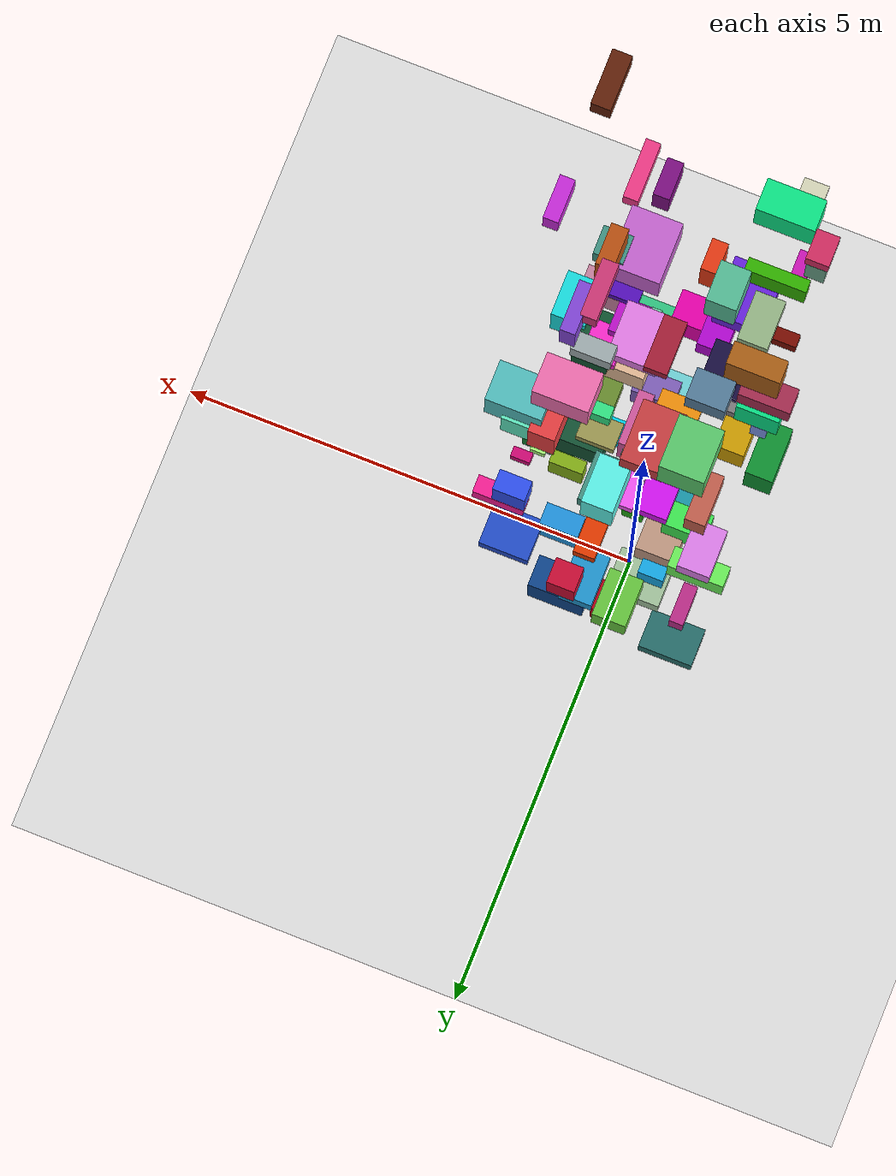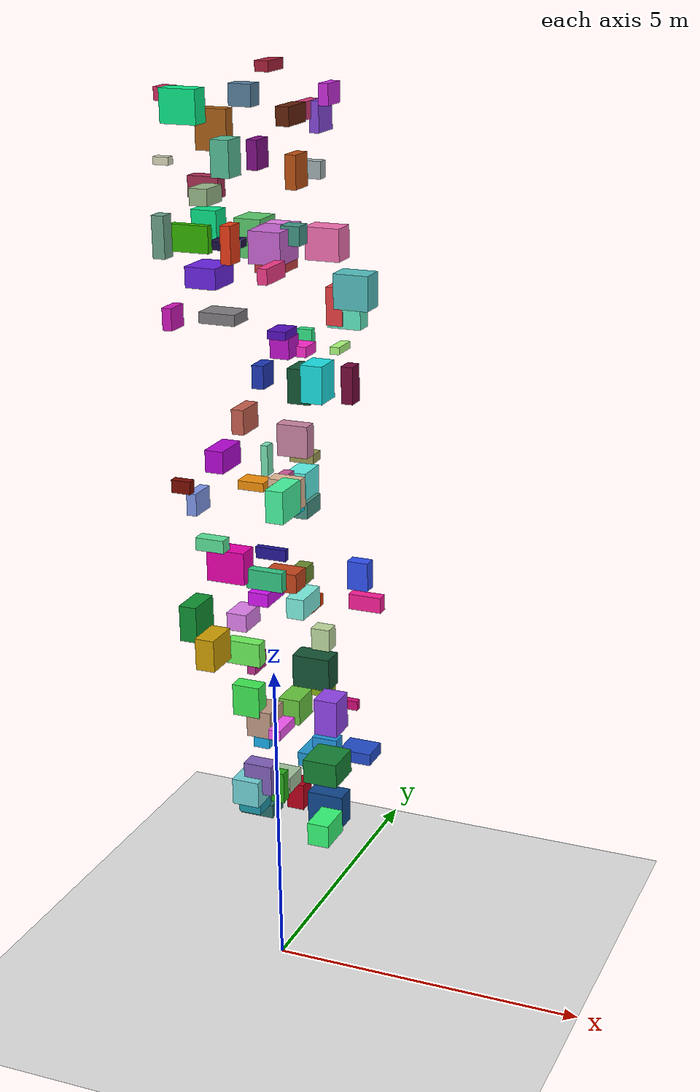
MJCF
<mujoco>
  <option timestep="0.002" gravity="0 0 -9.81" iterations="50"/>
  <compiler angle="degree"/>

  <worldbody>

    <light diffuse="0.6 0.6 0.6" pos="0 0 6" dir="0 0 -1"/>
    <light diffuse="0.4 0.4 0.4" pos="3 3 6" dir="-1 -1 -1"/>

    <geom type="plane" size="5 5 0.1" rgba="0.9 0.9 0.9 1"
          friction="1.0 0.5 0.5"/>

    <body pos="1.063 0.027 13.715">
      <joint type="free"/>
      <geom type="box"
            size="0.070 0.202 0.144"
            rgba="0.80 0.17 0.87 1"
            friction="0.8 0.1 0.1"/>
    </body>

    <body pos="0.105 0.965 7.726">
      <joint type="free"/>
      <geom type="box"
            size="0.158 0.247 0.296"
            rgba="0.37 0.97 0.93 1"
            friction="0.8 0.1 0.1"/>
    </body>

    <body pos="-0.774 0.261 10.458">
      <joint type="free"/>
      <geom type="box"
            size="0.286 0.216 0.083"
            rgba="0.50 0.49 0.50 1"
            friction="0.8 0.1 0.1"/>
    </body>

    <body pos="1.101 -0.360 4.685">
      <joint type="free"/>
      <geom type="box"
            size="0.181 0.210 0.285"
            rgba="0.58 0.27 0.93 1"
            friction="0.8 0.1 0.1"/>
    </body>

    <body pos="-0.020 0.422 7.712">
      <joint type="free"/>
      <geom type="box"
            size="0.104 0.223 0.243"
            rgba="0.19 0.46 0.36 1"
            friction="0.8 0.1 0.1"/>
    </body>

    <body pos="-0.790 -0.669 13.550">
      <joint type="free"/>
      <geom type="box"
            size="0.271 0.146 0.235"
            rgba="0.04 0.92 0.54 1"
            friction="0.8 0.1 0.1"/>
    </body>

    <body pos="0.769 -0.538 6.513">
      <joint type="free"/>
      <geom type="box"
            size="0.137 0.293 0.157"
            rgba="0.50 0.96 0.90 1"
            friction="0.8 0.1 0.1"/>
    </body>

    <body pos="-0.252 -0.462 11.685">
      <joint type="free"/>
      <geom type="box"
            size="0.077 0.148 0.269"
            rgba="0.92 0.23 0.08 1"
            friction="0.8 0.1 0.1"/>
    </body>

    <body pos="0.691 0.292 4.850">
      <joint type="free"/>
      <geom type="box"
            size="0.176 0.068 0.225"
            rgba="0.53 0.70 0.09 1"
            friction="0.8 0.1 0.1"/>
    </body>

    <body pos="0.348 -0.311 7.992">
      <joint type="free"/>
      <geom type="box"
            size="0.134 0.209 0.192"
            rgba="0.62 0.06 0.23 1"
            friction="0.8 0.1 0.1"/>
    </body>

    <body pos="-1.027 -0.280 7.772">
      <joint type="free"/>
      <geom type="box"
            size="0.078 0.217 0.172"
            rgba="0.50 0.60 0.93 1"
            friction="0.8 0.1 0.1"/>
    </body>

    <body pos="0.213 -0.976 3.758">
      <joint type="free"/>
      <geom type="box"
            size="0.223 0.131 0.239"
            rgba="0.51 0.38 0.74 1"
            friction="0.8 0.1 0.1"/>
    </body>

    <body pos="-0.761 -0.516 5.503">
      <joint type="free"/>
      <geom type="box"
            size="0.154 0.277 0.253"
            rgba="0.82 0.63 0.01 1"
            friction="0.8 0.1 0.1"/>
    </body>

    <body pos="-0.513 0.004 12.781">
      <joint type="free"/>
      <geom type="box"
            size="0.141 0.188 0.262"
            rgba="0.34 0.75 0.60 1"
            friction="0.8 0.1 0.1"/>
    </body>

    <body pos="0.061 0.311 7.818">
      <joint type="free"/>
      <geom type="box"
            size="0.078 0.274 0.292"
            rgba="0.83 0.35 0.63 1"
            friction="0.8 0.1 0.1"/>
    </body>

    <body pos="0.650 -1.051 11.473">
      <joint type="free"/>
      <geom type="box"
            size="0.071 0.285 0.110"
            rgba="0.96 0.23 0.54 1"
            friction="0.8 0.1 0.1"/>
    </body>

    <body pos="0.796 1.170 10.468">
      <joint type="free"/>
      <geom type="box"
            size="0.259 0.148 0.238"
            rgba="0.38 0.93 0.77 1"
            friction="0.8 0.1 0.1"/>
    </body>

    <body pos="-0.289 0.682 2.798">
      <joint type="free"/>
      <geom type="box"
            size="0.281 0.223 0.132"
            rgba="0.65 0.78 0.63 1"
            friction="0.8 0.1 0.1"/>
    </body>

    <body pos="0.928 -0.203 5.840">
      <joint type="free"/>
      <geom type="box"
            size="0.143 0.120 0.170"
            rgba="0.76 0.87 0.63 1"
            friction="0.8 0.1 0.1"/>
    </body>

    <body pos="0.686 1.128 9.916">
      <joint type="free"/>
      <geom type="box"
            size="0.071 0.206 0.055"
            rgba="0.68 1.00 0.49 1"
            friction="0.8 0.1 0.1"/>
    </body>

    <body pos="1.039 -1.153 13.582">
      <joint type="free"/>
      <geom type="box"
            size="0.092 0.260 0.125"
            rgba="0.39 0.13 0.04 1"
            friction="0.8 0.1 0.1"/>
    </body>

    <body pos="0.605 0.591 3.482">
      <joint type="free"/>
      <geom type="box"
            size="0.206 0.114 0.274"
            rgba="0.13 0.59 0.89 1"
            friction="0.8 0.1 0.1"/>
    </body>

    <body pos="0.092 0.410 11.725">
      <joint type="free"/>
      <geom type="box"
            size="0.227 0.256 0.106"
            rgba="0.91 0.50 0.92 1"
            friction="0.8 0.1 0.1"/>
    </body>

    <body pos="0.477 0.562 13.412">
      <joint type="free"/>
      <geom type="box"
            size="0.076 0.268 0.123"
            rgba="0.82 0.22 0.47 1"
            friction="0.8 0.1 0.1"/>
    </body>

    <body pos="-0.866 0.733 5.511">
      <joint type="free"/>
      <geom type="box"
            size="0.168 0.249 0.143"
            rgba="0.89 0.51 0.94 1"
            friction="0.8 0.1 0.1"/>
    </body>

    <body pos="0.651 1.185 10.551">
      <joint type="free"/>
      <geom type="box"
            size="0.128 0.183 0.285"
            rgba="0.92 0.25 0.26 1"
            friction="0.8 0.1 0.1"/>
    </body>

    <body pos="-0.594 0.301 4.333">
      <joint type="free"/>
      <geom type="box"
            size="0.226 0.130 0.259"
            rgba="0.25 0.93 0.33 1"
            friction="0.8 0.1 0.1"/>
    </body>

    <body pos="-1.116 -0.812 11.794">
      <joint type="free"/>
      <geom type="box"
            size="0.093 0.113 0.299"
            rgba="0.42 0.64 0.54 1"
            friction="0.8 0.1 0.1"/>
    </body>

    <body pos="-0.075 0.954 2.438">
      <joint type="free"/>
      <geom type="box"
            size="0.145 0.163 0.221"
            rgba="0.73 0.00 0.10 1"
            friction="0.8 0.1 0.1"/>
    </body>

    <body pos="-0.627 -0.398 11.213">
      <joint type="free"/>
      <geom type="box"
            size="0.236 0.282 0.150"
            rgba="0.42 0.14 0.89 1"
            friction="0.8 0.1 0.1"/>
    </body>

    <body pos="0.956 1.094 10.805">
      <joint type="free"/>
      <geom type="box"
            size="0.271 0.192 0.260"
            rgba="0.33 0.76 0.76 1"
            friction="0.8 0.1 0.1"/>
    </body>

    <body pos="0.284 0.814 10.114">
      <joint type="free"/>
      <geom type="box"
            size="0.112 0.063 0.131"
            rgba="0.20 0.91 0.53 1"
            friction="0.8 0.1 0.1"/>
    </body>

    <body pos="0.551 1.020 11.488">
      <joint type="free"/>
      <geom type="box"
            size="0.267 0.190 0.240"
            rgba="0.96 0.44 0.70 1"
            friction="0.8 0.1 0.1"/>
    </body>

    <body pos="1.087 -0.621 2.865">
      <joint type="free"/>
      <geom type="box"
            size="0.170 0.273 0.181"
            rgba="0.21 0.99 0.47 1"
            friction="0.8 0.1 0.1"/>
    </body>

    <body pos="-0.150 -1.024 7.164">
      <joint type="free"/>
      <geom type="box"
            size="0.295 0.158 0.244"
            rgba="0.93 0.00 0.69 1"
            friction="0.8 0.1 0.1"/>
    </body>

    <body pos="-0.858 0.021 12.240">
      <joint type="free"/>
      <geom type="box"
            size="0.140 0.230 0.121"
            rgba="0.60 0.73 0.54 1"
            friction="0.8 0.1 0.1"/>
    </body>

    <body pos="-0.421 0.575 3.656">
      <joint type="free"/>
      <geom type="box"
            size="0.133 0.247 0.175"
            rgba="0.09 0.68 0.92 1"
            friction="0.8 0.1 0.1"/>
    </body>

    <body pos="-0.788 1.005 2.053">
      <joint type="free"/>
      <geom type="box"
            size="0.289 0.202 0.115"
            rgba="0.16 0.44 0.43 1"
            friction="0.8 0.1 0.1"/>
    </body>

    <body pos="0.015 0.041 3.041">
      <joint type="free"/>
      <geom type="box"
            size="0.112 0.086 0.255"
            rgba="0.15 0.67 0.09 1"
            friction="0.8 0.1 0.1"/>
    </body>

    <body pos="0.367 -0.157 8.035">
      <joint type="free"/>
      <geom type="box"
            size="0.237 0.128 0.224"
            rgba="0.91 0.74 0.60 1"
            friction="0.8 0.1 0.1"/>
    </body>

    <body pos="0.457 0.942 2.302">
      <joint type="free"/>
      <geom type="box"
            size="0.299 0.167 0.274"
            rgba="0.06 0.28 0.56 1"
            friction="0.8 0.1 0.1"/>
    </body>

    <body pos="0.165 1.055 5.789">
      <joint type="free"/>
      <geom type="box"
            size="0.110 0.209 0.091"
            rgba="0.91 0.23 0.00 1"
            friction="0.8 0.1 0.1"/>
    </body>

    <body pos="0.304 -0.655 12.974">
      <joint type="free"/>
      <geom type="box"
            size="0.076 0.175 0.200"
            rgba="0.50 0.06 0.52 1"
            friction="0.8 0.1 0.1"/>
    </body>

    <body pos="-0.888 -1.095 12.879">
      <joint type="free"/>
      <geom type="box"
            size="0.115 0.068 0.053"
            rgba="0.86 0.86 0.74 1"
            friction="0.8 0.1 0.1"/>
    </body>

    <body pos="0.701 -0.532 8.994">
      <joint type="free"/>
      <geom type="box"
            size="0.234 0.112 0.233"
            rgba="0.80 0.52 0.64 1"
            friction="0.8 0.1 0.1"/>
    </body>

    <body pos="-1.138 -0.296 5.864">
      <joint type="free"/>
      <geom type="box"
            size="0.140 0.281 0.285"
            rgba="0.06 0.58 0.20 1"
            friction="0.8 0.1 0.1"/>
    </body>

    <body pos="0.365 1.138 3.720">
      <joint type="free"/>
      <geom type="box"
            size="0.147 0.135 0.227"
            rgba="0.81 0.05 0.21 1"
            friction="0.8 0.1 0.1"/>
    </body>

    <body pos="-0.307 1.106 11.144">
      <joint type="free"/>
      <geom type="box"
            size="0.207 0.292 0.149"
            rgba="0.80 0.25 0.26 1"
            friction="0.8 0.1 0.1"/>
    </body>

    <body pos="0.998 0.764 9.493">
      <joint type="free"/>
      <geom type="box"
            size="0.090 0.129 0.281"
            rgba="0.46 0.04 0.23 1"
            friction="0.8 0.1 0.1"/>
    </body>

    <body pos="0.215 0.867 7.469">
      <joint type="free"/>
      <geom type="box"
            size="0.112 0.249 0.128"
            rgba="0.27 0.58 0.52 1"
            friction="0.8 0.1 0.1"/>
    </body>

    <body pos="0.872 -0.113 9.749">
      <joint type="free"/>
      <geom type="box"
            size="0.164 0.219 0.275"
            rgba="0.10 0.89 0.90 1"
            friction="0.8 0.1 0.1"/>
    </body>

    <body pos="-0.333 -1.192 7.508">
      <joint type="free"/>
      <geom type="box"
            size="0.219 0.100 0.096"
            rgba="0.36 0.90 0.60 1"
            friction="0.8 0.1 0.1"/>
    </body>

    <body pos="0.476 0.210 10.104">
      <joint type="free"/>
      <geom type="box"
            size="0.159 0.175 0.077"
            rgba="1.00 0.17 0.82 1"
            friction="0.8 0.1 0.1"/>
    </body>

    <body pos="0.323 0.604 8.357">
      <joint type="free"/>
      <geom type="box"
            size="0.188 0.136 0.070"
            rgba="0.63 0.61 0.33 1"
            friction="0.8 0.1 0.1"/>
    </body>

    <body pos="1.008 1.026 6.398">
      <joint type="free"/>
      <geom type="box"
            size="0.166 0.104 0.230"
            rgba="0.19 0.32 0.96 1"
            friction="0.8 0.1 0.1"/>
    </body>

    <body pos="-0.832 0.948 8.718">
      <joint type="free"/>
      <geom type="box"
            size="0.100 0.252 0.196"
            rgba="0.78 0.38 0.31 1"
            friction="0.8 0.1 0.1"/>
    </body>

    <body pos="-0.936 -0.893 8.204">
      <joint type="free"/>
      <geom type="box"
            size="0.149 0.065 0.097"
            rgba="0.49 0.05 0.01 1"
            friction="0.8 0.1 0.1"/>
    </body>

    <body pos="0.396 -0.982 6.984">
      <joint type="free"/>
      <geom type="box"
            size="0.284 0.073 0.148"
            rgba="0.20 0.79 0.52 1"
            friction="0.8 0.1 0.1"/>
    </body>

    <body pos="-0.998 0.621 13.063">
      <joint type="free"/>
      <geom type="box"
            size="0.247 0.105 0.297"
            rgba="0.68 0.38 0.09 1"
            friction="0.8 0.1 0.1"/>
    </body>

    <body pos="0.070 -1.010 3.566">
      <joint type="free"/>
      <geom type="box"
            size="0.213 0.237 0.204"
            rgba="0.45 0.84 0.86 1"
            friction="0.8 0.1 0.1"/>
    </body>

    <body pos="-1.112 0.570 11.697">
      <joint type="free"/>
      <geom type="box"
            size="0.201 0.157 0.244"
            rgba="0.03 0.90 0.54 1"
            friction="0.8 0.1 0.1"/>
    </body>

    <body pos="0.205 0.395 7.621">
      <joint type="free"/>
      <geom type="box"
            size="0.124 0.112 0.091"
            rgba="0.01 0.86 0.97 1"
            friction="0.8 0.1 0.1"/>
    </body>

    <body pos="0.453 -0.468 6.811">
      <joint type="free"/>
      <geom type="box"
            size="0.253 0.169 0.148"
            rgba="0.78 0.27 0.11 1"
            friction="0.8 0.1 0.1"/>
    </body>

    <body pos="-0.249 0.919 13.945">
      <joint type="free"/>
      <geom type="box"
            size="0.105 0.245 0.076"
            rgba="0.66 0.12 0.22 1"
            friction="0.8 0.1 0.1"/>
    </body>

    <body pos="0.676 -0.932 8.196">
      <joint type="free"/>
      <geom type="box"
            size="0.135 0.298 0.241"
            rgba="0.28 0.98 0.64 1"
            friction="0.8 0.1 0.1"/>
    </body>

    <body pos="-0.824 -0.516 11.731">
      <joint type="free"/>
      <geom type="box"
            size="0.290 0.059 0.193"
            rgba="0.20 0.71 0.00 1"
            friction="0.8 0.1 0.1"/>
    </body>

    <body pos="0.578 0.090 9.636">
      <joint type="free"/>
      <geom type="box"
            size="0.171 0.219 0.258"
            rgba="0.07 0.34 0.20 1"
            friction="0.8 0.1 0.1"/>
    </body>

    <body pos="-0.100 0.251 6.870">
      <joint type="free"/>
      <geom type="box"
            size="0.246 0.053 0.091"
            rgba="0.14 0.09 0.60 1"
            friction="0.8 0.1 0.1"/>
    </body>

    <body pos="0.445 -0.336 10.467">
      <joint type="free"/>
      <geom type="box"
            size="0.140 0.197 0.060"
            rgba="0.34 0.06 0.75 1"
            friction="0.8 0.1 0.1"/>
    </body>

    <body pos="0.393 0.855 12.549">
      <joint type="free"/>
      <geom type="box"
            size="0.187 0.086 0.125"
            rgba="0.64 0.69 0.70 1"
            friction="0.8 0.1 0.1"/>
    </body>

    <body pos="-0.958 -0.901 10.693">
      <joint type="free"/>
      <geom type="box"
            size="0.071 0.178 0.160"
            rgba="0.82 0.09 0.74 1"
            friction="0.8 0.1 0.1"/>
    </body>

    <body pos="-0.397 0.433 3.954">
      <joint type="free"/>
      <geom type="box"
            size="0.205 0.238 0.223"
            rgba="0.77 0.61 0.52 1"
            friction="0.8 0.1 0.1"/>
    </body>

    <body pos="0.409 -0.911 10.007">
      <joint type="free"/>
      <geom type="box"
            size="0.087 0.167 0.166"
            rgba="0.12 0.22 0.72 1"
            friction="0.8 0.1 0.1"/>
    </body>

    <body pos="0.332 -0.039 10.196">
      <joint type="free"/>
      <geom type="box"
            size="0.147 0.169 0.155"
            rgba="0.76 0.07 0.81 1"
            friction="0.8 0.1 0.1"/>
    </body>

    <body pos="-1.174 -0.421 13.671">
      <joint type="free"/>
      <geom type="box"
            size="0.106 0.140 0.092"
            rgba="0.84 0.18 0.39 1"
            friction="0.8 0.1 0.1"/>
    </body>

    <body pos="-0.373 -0.690 8.658">
      <joint type="free"/>
      <geom type="box"
            size="0.140 0.285 0.165"
            rgba="0.72 0.03 0.84 1"
            friction="0.8 0.1 0.1"/>
    </body>

    <body pos="0.222 -0.481 8.626">
      <joint type="free"/>
      <geom type="box"
            size="0.053 0.089 0.227"
            rgba="0.47 0.90 0.71 1"
            friction="0.8 0.1 0.1"/>
    </body>

    <body pos="1.053 0.845 3.443">
      <joint type="free"/>
      <geom type="box"
            size="0.262 0.224 0.096"
            rgba="0.14 0.31 0.81 1"
            friction="0.8 0.1 0.1"/>
    </body>

    <body pos="-0.268 0.098 8.015">
      <joint type="free"/>
      <geom type="box"
            size="0.208 0.159 0.067"
            rgba="0.96 0.57 0.04 1"
            friction="0.8 0.1 0.1"/>
    </body>

    <body pos="-0.729 1.060 13.505">
      <joint type="free"/>
      <geom type="box"
            size="0.178 0.141 0.160"
            rgba="0.34 0.50 0.62 1"
            friction="0.8 0.1 0.1"/>
    </body>

    <body pos="-0.861 1.128 4.571">
      <joint type="free"/>
      <geom type="box"
            size="0.072 0.206 0.140"
            rgba="0.75 0.18 0.55 1"
            friction="0.8 0.1 0.1"/>
    </body>

    <body pos="-0.882 0.798 4.887">
      <joint type="free"/>
      <geom type="box"
            size="0.291 0.107 0.197"
            rgba="0.43 0.96 0.36 1"
            friction="0.8 0.1 0.1"/>
    </body>

    <body pos="0.219 0.950 3.200">
      <joint type="free"/>
      <geom type="box"
            size="0.176 0.269 0.118"
            rgba="0.13 0.60 0.83 1"
            friction="0.8 0.1 0.1"/>
    </body>

    <body pos="0.947 -0.003 4.468">
      <joint type="free"/>
      <geom type="box"
            size="0.053 0.150 0.086"
            rgba="0.60 0.70 0.69 1"
            friction="0.8 0.1 0.1"/>
    </body>

    <body pos="-0.680 1.180 11.466">
      <joint type="free"/>
      <geom type="box"
            size="0.213 0.254 0.289"
            rgba="0.36 0.80 0.43 1"
            friction="0.8 0.1 0.1"/>
    </body>

    <body pos="-0.209 1.184 3.877">
      <joint type="free"/>
      <geom type="box"
            size="0.178 0.253 0.214"
            rgba="0.41 0.79 0.25 1"
            friction="0.8 0.1 0.1"/>
    </body>

    <body pos="0.075 0.049 4.049">
      <joint type="free"/>
      <geom type="box"
            size="0.099 0.268 0.081"
            rgba="0.98 0.35 0.98 1"
            friction="0.8 0.1 0.1"/>
    </body>

    <body pos="0.556 0.015 12.662">
      <joint type="free"/>
      <geom type="box"
            size="0.081 0.194 0.236"
            rgba="0.74 0.32 0.07 1"
            friction="0.8 0.1 0.1"/>
    </body>

    <body pos="1.119 1.025 5.960">
      <joint type="free"/>
      <geom type="box"
            size="0.262 0.090 0.124"
            rgba="0.99 0.12 0.60 1"
            friction="0.8 0.1 0.1"/>
    </body>

    <body pos="0.596 0.778 13.312">
      <joint type="free"/>
      <geom type="box"
            size="0.071 0.234 0.219"
            rgba="0.52 0.28 0.86 1"
            friction="0.8 0.1 0.1"/>
    </body>

    <body pos="-0.302 0.427 6.121">
      <joint type="free"/>
      <geom type="box"
            size="0.164 0.296 0.106"
            rgba="0.85 0.08 0.97 1"
            friction="0.8 0.1 0.1"/>
    </body>

    <body pos="0.351 -0.348 11.697">
      <joint type="free"/>
      <geom type="box"
            size="0.240 0.293 0.229"
            rgba="0.79 0.40 0.83 1"
            friction="0.8 0.1 0.1"/>
    </body>

    <body pos="0.685 0.016 5.180">
      <joint type="free"/>
      <geom type="box"
            size="0.297 0.171 0.255"
            rgba="0.08 0.33 0.21 1"
            friction="0.8 0.1 0.1"/>
    </body>

    <body pos="0.613 -0.229 11.834">
      <joint type="free"/>
      <geom type="box"
            size="0.141 0.135 0.136"
            rgba="0.26 0.59 0.53 1"
            friction="0.8 0.1 0.1"/>
    </body>

    <body pos="1.006 -0.318 3.756">
      <joint type="free"/>
      <geom type="box"
            size="0.271 0.291 0.191"
            rgba="0.08 0.52 0.21 1"
            friction="0.8 0.1 0.1"/>
    </body>

    <body pos="-0.331 -0.152 2.788">
      <joint type="free"/>
      <geom type="box"
            size="0.181 0.182 0.117"
            rgba="0.11 0.61 0.68 1"
            friction="0.8 0.1 0.1"/>
    </body>

    <body pos="1.169 0.297 4.551">
      <joint type="free"/>
      <geom type="box"
            size="0.102 0.054 0.074"
            rgba="0.83 0.04 0.47 1"
            friction="0.8 0.1 0.1"/>
    </body>

    <body pos="-0.706 0.357 11.499">
      <joint type="free"/>
      <geom type="box"
            size="0.192 0.227 0.061"
            rgba="0.10 0.06 0.26 1"
            friction="0.8 0.1 0.1"/>
    </body>

    <body pos="-1.146 0.607 12.253">
      <joint type="free"/>
      <geom type="box"
            size="0.242 0.117 0.155"
            rgba="0.66 0.18 0.32 1"
            friction="0.8 0.1 0.1"/>
    </body>

    <body pos="0.477 -0.004 6.691">
      <joint type="free"/>
      <geom type="box"
            size="0.107 0.249 0.130"
            rgba="0.42 0.56 0.19 1"
            friction="0.8 0.1 0.1"/>
    </body>

  </worldbody>
</mujoco>
